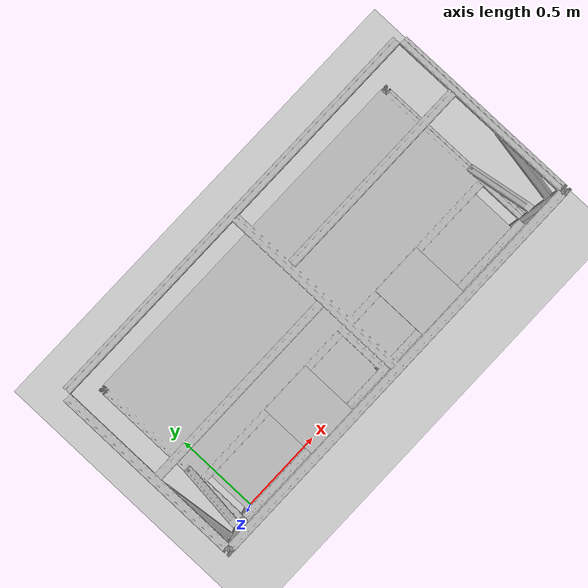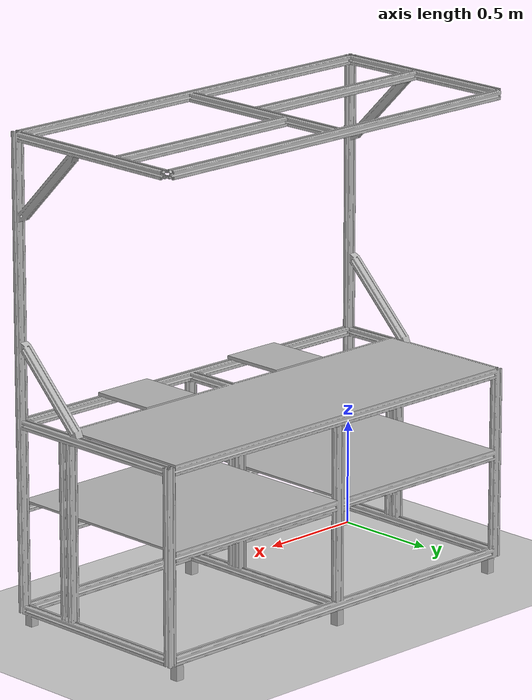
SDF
<sdf version="1.4">
 <world name="default">
  <include><uri>model://ground_plane</uri></include>
  <include><uri>model://sun</uri></include>
  <include><uri>model://workcell-assembly-v2</uri><name>workcell-assembly-v2</name></include>
 </world>
</sdf>

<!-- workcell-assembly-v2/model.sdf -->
<sdf version="1.4">
<model name="workcell-assembly-v2">
<static>false</static>

  <!-- workcell-assembly-v2 -->
  <link name="workcell-assembly-v2">
    <pose>0 0 0.07 0 0 0</pose>
    <inertial>
      <mass>13.55</mass>
      <inertia><ixx>0.294</ixx><iyy>0.294</iyy><izz>0.023</izz><ixy>0</ixy><ixz>0</ixz><iyz>0</iyz></inertia>
    </inertial>
    <collision name="collision">
      <geometry>
          <mesh>
            <uri>model://workcell-assembly-v2/meshes/workcell-assembly-v2.stl</uri>
          </mesh>
      </geometry>
    </collision>
    <visual name="visual">
      <geometry>
          <mesh>
            <uri>model://workcell-assembly-v2/meshes/workcell-assembly-v2.stl</uri>
          </mesh>
      </geometry>
    </visual>
  </link>

 <!-- robot-base-fixation1 -->
  <link name="robot-base-fixation1">
    <pose>0.62 0.138 0.97 0 0 0</pose>			<!-- to move the arm-base edit the x-coordinate -->
    <inertial>
      <mass>1.84</mass>
      <inertia><ixx>0.294</ixx><iyy>0.294</iyy><izz>0.023</izz><ixy>0</ixy><ixz>0</ixz><iyz>0</iyz></inertia>
    </inertial>
    <collision name="collision">
      <geometry>
          <mesh>
            <uri>model://workcell-assembly-v2/meshes/robot-base-fixation.stl</uri>
          </mesh>
      </geometry>
    </collision>
    <visual name="visual">
      <geometry>
          <mesh>
            <uri>model://workcell-assembly-v2/meshes/robot-base-fixation.stl</uri>
          </mesh>
      </geometry>
    </visual>
  </link>

  <!-- robot-base-fixation2 -->
  <link name="robot-base-fixation2">
    <pose>1.42 0.138 0.97 0 0 0</pose>			<!-- to move the arm-base edit the x-coordinate -->
    <inertial>
      <mass>1.84</mass>
      <inertia><ixx>0.294</ixx><iyy>0.294</iyy><izz>0.023</izz><ixy>0</ixy><ixz>0</ixz><iyz>0</iyz></inertia>
    </inertial>
    <collision name="collision">
      <geometry>
          <mesh>
            <uri>model://workcell-assembly-v2/meshes/robot-base-fixation.stl</uri>
          </mesh>
      </geometry>
    </collision>
    <visual name="visual">
      <geometry>
          <mesh>
            <uri>model://workcell-assembly-v2/meshes/robot-base-fixation.stl</uri>
          </mesh>
      </geometry>
    </visual>
  </link>

<!-- camera-movable-fixation1 -->
  <link name="camera-movable-fixation1">
    <pose>0.02 0.42 2.25 0 0 0</pose>			<!-- to move the camera edit the y-coordinate -->
    <inertial>
      <mass>1.84</mass>
      <inertia><ixx>0.294</ixx><iyy>0.294</iyy><izz>0.023</izz><ixy>0</ixy><ixz>0</ixz><iyz>0</iyz></inertia>
    </inertial>
    <collision name="collision">
      <geometry>
          <mesh>
            <uri>model://workcell-assembly-v2/meshes/camera-movable-fixation.stl</uri>
          </mesh>
      </geometry>
    </collision>
    <visual name="visual">
      <geometry>
          <mesh>
            <uri>model://workcell-assembly-v2/meshes/camera-movable-fixation.stl</uri>
          </mesh>
      </geometry>
    </visual>
  </link>

<!-- camera-movable-fixation2 -->
  <link name="camera-movable-fixation2">
    <pose>1.04 0.62 2.25 0 0 0</pose>			<!-- to move the camera edit the y-coordinate -->
    <inertial>
      <mass>1.84</mass>
      <inertia><ixx>0.294</ixx><iyy>0.294</iyy><izz>0.023</izz><ixy>0</ixy><ixz>0</ixz><iyz>0</iyz></inertia>
    </inertial>
    <collision name="collision">
      <geometry>
          <mesh>
            <uri>model://workcell-assembly-v2/meshes/camera-movable-fixation.stl</uri>
          </mesh>
      </geometry>
    </collision>
    <visual name="visual">
      <geometry>
          <mesh>
            <uri>model://workcell-assembly-v2/meshes/camera-movable-fixation.stl</uri>
          </mesh>
      </geometry>
    </visual>
  </link>

<!-- fix to ground -->
  <joint name="fix-to-ground" type="fixed">
    <pose>0 0 0 0 0 0</pose>
    <parent>world</parent>
    <child>workcell-assembly-v2</child>
  </joint>

  <!-- fix robot-base-fixation1 to workcell -->
  <joint name="fix-robot-base-fixation1" type="fixed">
    <pose>0 0 0 0 0 0</pose>
    <parent>workcell-assembly-v2</parent>
    <child>robot-base-fixation1</child>
  </joint>

  <!-- fix robot-base-fixation2 to workcell -->
  <joint name="fix-robot-base-fixation2" type="fixed">
    <pose>0 0 0 0 0 0</pose>
    <parent>workcell-assembly-v2</parent>
    <child>robot-base-fixation2</child>
  </joint>

  <!-- fix camera-movable-fixation1 to workcell -->
  <joint name="fix-camera-movable-fixation1" type="fixed">
    <pose>0 0 0 0 0 0</pose>
    <parent>workcell-assembly-v2</parent>
    <child>camera-movable-fixation1</child>
  </joint>

  <!-- fix camera-movable-fixation2 to workcell -->
  <joint name="fix-camera-movable-fixation2" type="fixed">
    <pose>0 0 0 0 0 0</pose>
    <parent>workcell-assembly-v2</parent>
    <child>camera-movable-fixation2</child>
  </joint>

  </model>

  </sdf>
